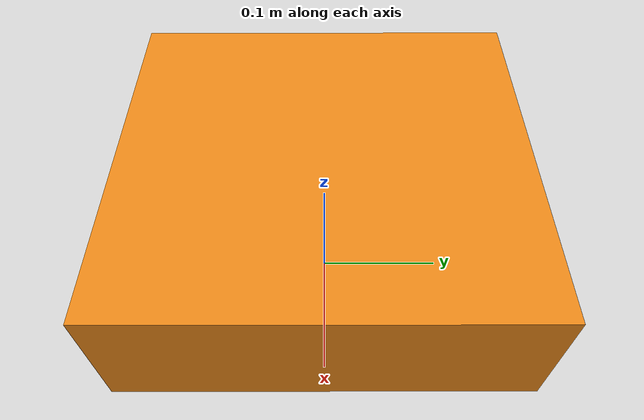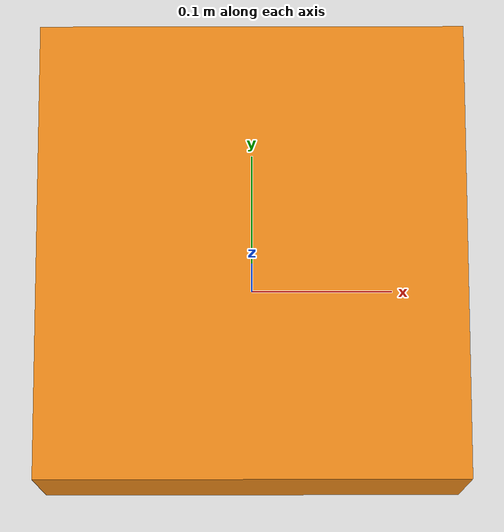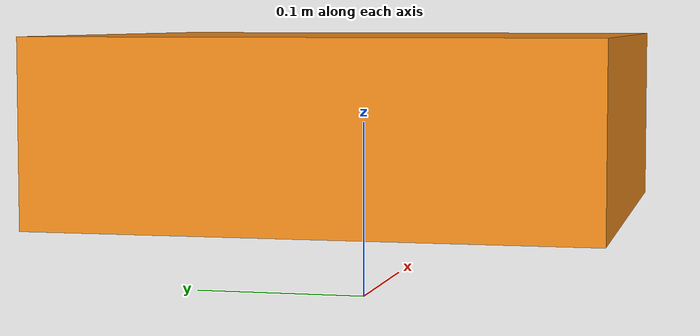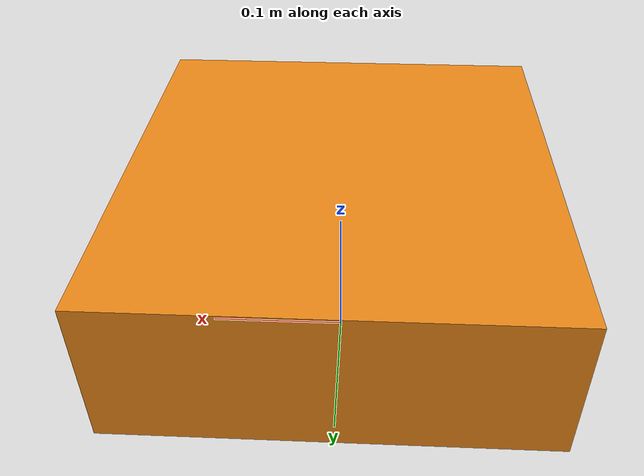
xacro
<?xml version="1.0"?>
<robot name="rmitbot" xmlns:xacro="http://www.ros.org/wiki/xacro" xmlns:gz="http://gazebosim.org/schema">

  <link name="base_footprint" />

  <!-- Inertial, visual, collision of the link -->
  <link name="base_link">
    <collision>
      <origin xyz="0 0 0.05" rpy="0 0 0" />
      <geometry>
         <box size=".28 .3 0.1" />
      </geometry>
    </collision>
    <visual>
      <origin xyz="0 0 0.05" rpy="0 0 0" />
      <geometry>
         <box size=".28 .3 0.1" />
      </geometry>
      <material name="orange" />
    </visual>
    <inertial>
      <origin xyz="0 0 0.5" rpy="0 0 0" />
      <mass value="1.5" />
      <inertia
        ixx="0.13"
        ixy="0.0"
        ixz="0.0"
        iyy="0.42"
        iyz="0.0"
        izz="0.48" />
    </inertial>
  </link>

  <!-- Parent, child, and origin -->
  <joint name="base_joint" type="fixed">
    <parent link="base_footprint" />
    <child link="base_link" />
    <origin xyz="0 0 0.05" rpy="0 0 0" />
  </joint>

</robot>
